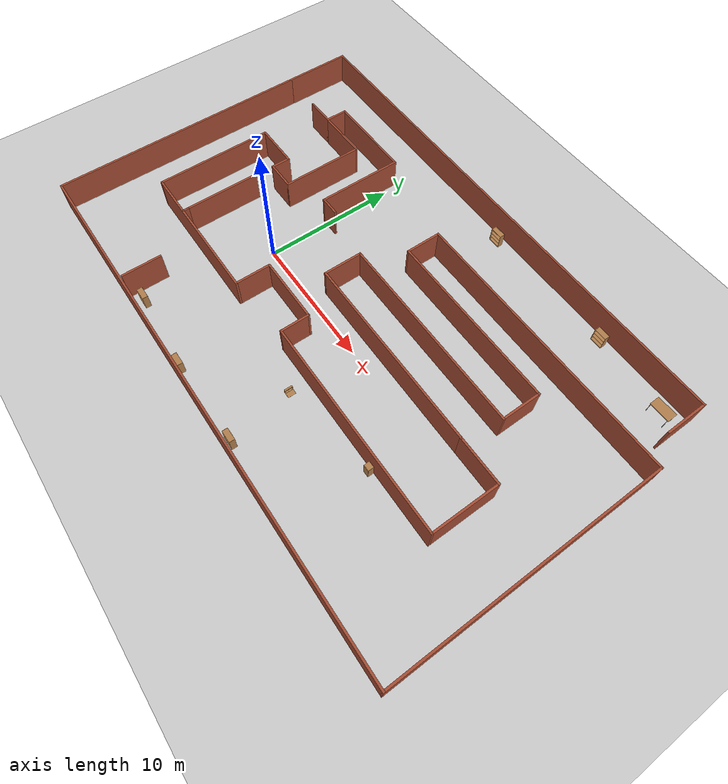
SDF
<sdf version="1.7">
 <world name="default">
  <light name="sun" type="directional">
   <pose>0 0 10 0 -0 0</pose>
   <diffuse>0.8 0.8 0.8 1</diffuse>
   <specular>0.2 0.2 0.2 1</specular>
   <attenuation>
    <range>1000</range>
    <constant>0.9</constant>
    <linear>0.01</linear>
    <quadratic>0.001</quadratic>
   </attenuation>
   <direction>-0.5 0.1 -0.9</direction>
   <spot><inner_angle>0</inner_angle><outer_angle>0</outer_angle><falloff>0</falloff></spot>
  </light>
  <model name="ground_plane">
   <static>1</static>
   <link name="link">
    <collision name="collision">
     <geometry><plane><normal>0 0 1</normal><size>100 100</size></plane></geometry>
     <surface><friction><ode><mu>100</mu><mu2>50</mu2></ode></friction></surface>
    </collision>
    <visual name="visual">
     <cast_shadows>0</cast_shadows>
     <geometry><plane><normal>0 0 1</normal><size>100 100</size></plane></geometry>
     <material>
      <script><uri>file://media/materials/scripts/gazebo.material</uri><name>Gazebo/Grey</name></script>
     </material>
    </visual>
   </link>
  </model>
  <gravity>0 0 -9.8</gravity>
  <magnetic_field>6e-06 2.3e-05 -4.2e-05</magnetic_field>
  <atmosphere type="adiabatic"/>
  <physics type="ode">
   <max_step_size>0.001</max_step_size>
   <real_time_factor>1</real_time_factor>
   <real_time_update_rate>1000</real_time_update_rate>
  </physics>
  <scene><ambient>0.4 0.4 0.4 1</ambient><background>0.7 0.7 0.7 1</background><shadows>1</shadows></scene>
  <audio><device>default</device></audio>
  <spherical_coordinates>
   <surface_model>EARTH_WGS84</surface_model>
   <latitude_deg>0</latitude_deg>
   <longitude_deg>0</longitude_deg>
   <elevation>0</elevation>
   <heading_deg>0</heading_deg>
  </spherical_coordinates>
  <model name="test3">
   <pose>7.49486 2.15543 0 0 -0 0</pose>
   <link name="Wall_10">
    <collision name="Wall_10_Collision">
     <geometry><box><size>20.75 0.15 2.5</size></box></geometry>
     <pose>0 0 1.25 0 -0 0</pose>
    </collision>
    <visual name="Wall_10_Visual">
     <pose>0 0 1.25 0 -0 0</pose>
     <geometry><box><size>20.75 0.15 2.5</size></box></geometry>
     <material>
      <script><uri>file://media/materials/scripts/gazebo.material</uri><name>Gazebo/Bricks</name></script>
      <ambient>1 1 1 1</ambient>
     </material>
     <meta><layer>0</layer></meta>
    </visual>
    <pose>9.625 7.375 0 0 -0 3.14159</pose>
   </link>
   <link name="Wall_11">
    <collision name="Wall_11_Collision">
     <geometry><box><size>2.75 0.15 2.5</size></box></geometry>
     <pose>0 0 1.25 0 -0 0</pose>
    </collision>
    <visual name="Wall_11_Visual">
     <pose>0 0 1.25 0 -0 0</pose>
     <geometry><box><size>2.75 0.15 2.5</size></box></geometry>
     <material>
      <script><uri>file://media/materials/scripts/gazebo.material</uri><name>Gazebo/Bricks</name></script>
      <ambient>1 1 1 1</ambient>
     </material>
     <meta><layer>0</layer></meta>
    </visual>
    <pose>-0.675 6.075 0 0 -0 -1.5708</pose>
   </link>
   <link name="Wall_12">
    <collision name="Wall_12_Collision">
     <geometry><box><size>13.25 0.15 2.5</size></box></geometry>
     <pose>0 0 1.25 0 -0 0</pose>
    </collision>
    <visual name="Wall_12_Visual">
     <pose>0 0 1.25 0 -0 0</pose>
     <geometry><box><size>13.25 0.15 2.5</size></box></geometry>
     <material>
      <script><uri>file://media/materials/scripts/gazebo.material</uri><name>Gazebo/Bricks</name></script>
      <ambient>1 1 1 1</ambient>
     </material>
     <meta><layer>0</layer></meta>
    </visual>
    <pose>5.875 4.775 0 0 -0 0</pose>
   </link>
   <link name="Wall_13">
    <collision name="Wall_13_Collision">
     <geometry><box><size>3 0.15 2.5</size></box></geometry>
     <pose>0 0 1.25 0 -0 0</pose>
    </collision>
    <visual name="Wall_13_Visual">
     <pose>0 0 1.25 0 -0 0</pose>
     <geometry><box><size>3 0.15 2.5</size></box></geometry>
     <material>
      <script><uri>file://media/materials/scripts/gazebo.material</uri><name>Gazebo/Bricks</name></script>
      <ambient>1 1 1 1</ambient>
     </material>
     <meta><layer>0</layer></meta>
    </visual>
    <pose>12.425 3.35 0 0 -0 -1.5708</pose>
   </link>
   <link name="Wall_14">
    <collision name="Wall_14_Collision">
     <geometry><box><size>15 0.15 2.5</size></box></geometry>
     <pose>0 0 1.25 0 -0 0</pose>
    </collision>
    <visual name="Wall_14_Visual">
     <pose>0 0 1.25 0 -0 0</pose>
     <geometry><box><size>15 0.15 2.5</size></box></geometry>
     <material>
      <script><uri>file://media/materials/scripts/gazebo.material</uri><name>Gazebo/Bricks</name></script>
      <ambient>1 1 1 1</ambient>
     </material>
     <meta><layer>0</layer></meta>
    </visual>
    <pose>5 1.925 0 0 -0 3.14159</pose>
   </link>
   <link name="Wall_15">
    <collision name="Wall_15_Collision">
     <geometry><box><size>3 0.15 2.5</size></box></geometry>
     <pose>0 0 1.25 0 -0 0</pose>
    </collision>
    <visual name="Wall_15_Visual">
     <pose>0 0 1.25 0 -0 0</pose>
     <geometry><box><size>3 0.15 2.5</size></box></geometry>
     <material>
      <script><uri>file://media/materials/scripts/gazebo.material</uri><name>Gazebo/Bricks</name></script>
      <ambient>1 1 1 1</ambient>
     </material>
     <meta><layer>0</layer></meta>
    </visual>
    <pose>-2.425 0.500001 0 0 -0 -1.5708</pose>
   </link>
   <link name="Wall_16">
    <collision name="Wall_16_Collision">
     <geometry><box><size>14.5 0.15 2.5</size></box></geometry>
     <pose>0 0 1.25 0 -0 0</pose>
    </collision>
    <visual name="Wall_16_Visual">
     <pose>0 0 1.25 0 -0 0</pose>
     <geometry><box><size>14.5 0.15 2.5</size></box></geometry>
     <material>
      <script><uri>file://media/materials/scripts/gazebo.material</uri><name>Gazebo/Bricks</name></script>
      <ambient>1 1 1 1</ambient>
     </material>
     <meta><layer>0</layer></meta>
    </visual>
    <pose>4.75 -0.924999 0 0 -0 0</pose>
   </link>
   <link name="Wall_17">
    <collision name="Wall_17_Collision">
     <geometry><box><size>3.5 0.15 2.5</size></box></geometry>
     <pose>0 0 1.25 0 -0 0</pose>
    </collision>
    <visual name="Wall_17_Visual">
     <pose>0 0 1.25 0 -0 0</pose>
     <geometry><box><size>3.5 0.15 2.5</size></box></geometry>
     <material>
      <script><uri>file://media/materials/scripts/gazebo.material</uri><name>Gazebo/Bricks</name></script>
      <ambient>1 1 1 1</ambient>
     </material>
     <meta><layer>0</layer></meta>
    </visual>
    <pose>13.6 -0.924999 0 0 -0 0</pose>
   </link>
   <link name="Wall_18">
    <collision name="Wall_18_Collision">
     <geometry><box><size>5 0.15 2.5</size></box></geometry>
     <pose>0 0 1.25 0 -0 0</pose>
    </collision>
    <visual name="Wall_18_Visual">
     <pose>0 0 1.25 0 -0 0</pose>
     <geometry><box><size>5 0.15 2.5</size></box></geometry>
     <material>
      <script><uri>file://media/materials/scripts/gazebo.material</uri><name>Gazebo/Bricks</name></script>
      <ambient>1 1 1 1</ambient>
     </material>
     <meta><layer>0</layer></meta>
    </visual>
    <pose>15.275 -3.35 0 0 -0 -1.5708</pose>
   </link>
   <link name="Wall_19">
    <collision name="Wall_19_Collision">
     <geometry><box><size>15.75 0.15 2.5</size></box></geometry>
     <pose>0 0 1.25 0 -0 0</pose>
    </collision>
    <visual name="Wall_19_Visual">
     <pose>0 0 1.25 0 -0 0</pose>
     <geometry><box><size>15.75 0.15 2.5</size></box></geometry>
     <material>
      <script><uri>file://media/materials/scripts/gazebo.material</uri><name>Gazebo/Bricks</name></script>
      <ambient>1 1 1 1</ambient>
     </material>
     <meta><layer>0</layer></meta>
    </visual>
    <pose>7.475 -5.775 0 0 -0 3.14159</pose>
   </link>
   <link name="Wall_20">
    <collision name="Wall_20_Collision">
     <geometry><box><size>2.25 0.15 2.5</size></box></geometry>
     <pose>0 0 1.25 0 -0 0</pose>
    </collision>
    <visual name="Wall_20_Visual">
     <pose>0 0 1.25 0 -0 0</pose>
     <geometry><box><size>2.25 0.15 2.5</size></box></geometry>
     <material>
      <script><uri>file://media/materials/scripts/gazebo.material</uri><name>Gazebo/Bricks</name></script>
      <ambient>1 1 1 1</ambient>
     </material>
     <meta><layer>0</layer></meta>
    </visual>
    <pose>-0.325 -4.725 0 0 -0 1.5708</pose>
   </link>
   <link name="Wall_21">
    <collision name="Wall_21_Collision">
     <geometry><box><size>5 0.15 2.5</size></box></geometry>
     <pose>0 0 1.25 0 -0 0</pose>
    </collision>
    <visual name="Wall_21_Visual">
     <pose>0 0 1.25 0 -0 0</pose>
     <geometry><box><size>5 0.15 2.5</size></box></geometry>
     <material>
      <script><uri>file://media/materials/scripts/gazebo.material</uri><name>Gazebo/Bricks</name></script>
      <ambient>1 1 1 1</ambient>
     </material>
     <meta><layer>0</layer></meta>
    </visual>
    <pose>-2.75 -3.675 0 0 -0 3.14159</pose>
   </link>
   <link name="Wall_22">
    <collision name="Wall_22_Collision">
     <geometry><box><size>2.75 0.15 2.5</size></box></geometry>
     <pose>0 0 1.25 0 -0 0</pose>
    </collision>
    <visual name="Wall_22_Visual">
     <pose>0 0 1.25 0 -0 0</pose>
     <geometry><box><size>2.75 0.15 2.5</size></box></geometry>
     <material>
      <script><uri>file://media/materials/scripts/gazebo.material</uri><name>Gazebo/Bricks</name></script>
      <ambient>1 1 1 1</ambient>
     </material>
     <meta><layer>0</layer></meta>
    </visual>
    <pose>-5.175 -4.975 0 0 -0 -1.5708</pose>
   </link>
   <link name="Wall_23">
    <collision name="Wall_23_Collision">
     <geometry><box><size>11 0.15 2.5</size></box></geometry>
     <pose>0 0 1.25 0 -0 0</pose>
    </collision>
    <visual name="Wall_23_Visual">
     <pose>0 0 1.25 0 -0 0</pose>
     <geometry><box><size>11 0.15 2.5</size></box></geometry>
     <material>
      <script><uri>file://media/materials/scripts/gazebo.material</uri><name>Gazebo/Bricks</name></script>
      <ambient>1 1 1 1</ambient>
     </material>
     <meta><layer>0</layer></meta>
    </visual>
    <pose>-10.6 -6.275 0 0 -0 3.14159</pose>
   </link>
   <link name="Wall_24">
    <collision name="Wall_24_Collision">
     <geometry><box><size>9 0.15 2.5</size></box></geometry>
     <pose>0 0 1.25 0 -0 0</pose>
    </collision>
    <visual name="Wall_24_Visual">
     <pose>0 0 1.25 0 -0 0</pose>
     <geometry><box><size>9 0.15 2.5</size></box></geometry>
     <material>
      <script><uri>file://media/materials/scripts/gazebo.material</uri><name>Gazebo/Bricks</name></script>
      <ambient>1 1 1 1</ambient>
     </material>
     <meta><layer>0</layer></meta>
    </visual>
    <pose>-16.025 -1.85 0 0 -0 1.5708</pose>
   </link>
   <link name="Wall_25">
    <collision name="Wall_25_Collision">
     <geometry><box><size>3.5 0.15 2.5</size></box></geometry>
     <pose>0 0 1.25 0 -0 0</pose>
    </collision>
    <visual name="Wall_25_Visual">
     <pose>0 0 1.25 0 -0 0</pose>
     <geometry><box><size>3.5 0.15 2.5</size></box></geometry>
     <material>
      <script><uri>file://media/materials/scripts/gazebo.material</uri><name>Gazebo/Bricks</name></script>
      <ambient>1 1 1 1</ambient>
     </material>
     <meta><layer>0</layer></meta>
    </visual>
    <pose>-14.35 2.575 0 0 -0 0</pose>
   </link>
   <link name="Wall_26">
    <collision name="Wall_26_Collision">
     <geometry><box><size>1.5 0.15 2.5</size></box></geometry>
     <pose>0 0 1.25 0 -0 0</pose>
    </collision>
    <visual name="Wall_26_Visual">
     <pose>0 0 1.25 0 -0 0</pose>
     <geometry><box><size>1.5 0.15 2.5</size></box></geometry>
     <material>
      <script><uri>file://media/materials/scripts/gazebo.material</uri><name>Gazebo/Bricks</name></script>
      <ambient>1 1 1 1</ambient>
     </material>
     <meta><layer>0</layer></meta>
    </visual>
    <pose>-12.675 1.9 0 0 -0 -1.5708</pose>
   </link>
   <link name="Wall_27">
    <collision name="Wall_27_Collision">
     <geometry><box><size>2.25 0.15 2.5</size></box></geometry>
     <pose>0 0 1.25 0 -0 0</pose>
    </collision>
    <visual name="Wall_27_Visual">
     <pose>0 0 1.25 0 -0 0</pose>
     <geometry><box><size>2.25 0.15 2.5</size></box></geometry>
     <material>
      <script><uri>file://media/materials/scripts/gazebo.material</uri><name>Gazebo/Bricks</name></script>
      <ambient>1 1 1 1</ambient>
     </material>
     <meta><layer>0</layer></meta>
    </visual>
    <pose>-11.625 1.225 0 0 -0 0</pose>
   </link>
   <link name="Wall_28">
    <collision name="Wall_28_Collision">
     <geometry><box><size>6.25 0.15 2.5</size></box></geometry>
     <pose>0 0 1.25 0 -0 0</pose>
    </collision>
    <visual name="Wall_28_Visual">
     <pose>0 0 1.25 0 -0 0</pose>
     <geometry><box><size>6.25 0.15 2.5</size></box></geometry>
     <material>
      <script><uri>file://media/materials/scripts/gazebo.material</uri><name>Gazebo/Bricks</name></script>
      <ambient>1 1 1 1</ambient>
     </material>
     <meta><layer>0</layer></meta>
    </visual>
    <pose>-10.575 4.275 0 0 -0 1.5708</pose>
   </link>
   <link name="Wall_29">
    <collision name="Wall_29_Collision">
     <geometry><box><size>4 0.15 2.5</size></box></geometry>
     <pose>0 0 1.25 0 -0 0</pose>
    </collision>
    <visual name="Wall_29_Visual">
     <pose>0 0 1.25 0 -0 0</pose>
     <geometry><box><size>4 0.15 2.5</size></box></geometry>
     <material>
      <script><uri>file://media/materials/scripts/gazebo.material</uri><name>Gazebo/Bricks</name></script>
      <ambient>1 1 1 1</ambient>
     </material>
     <meta><layer>0</layer></meta>
    </visual>
    <pose>-12.5 7.325 0 0 -0 3.14159</pose>
   </link>
   <link name="Wall_30">
    <collision name="Wall_30_Collision">
     <geometry><box><size>1.75 0.15 2.5</size></box></geometry>
     <pose>0 0 1.25 0 -0 0</pose>
    </collision>
    <visual name="Wall_30_Visual">
     <pose>0 0 1.25 0 -0 0</pose>
     <geometry><box><size>1.75 0.15 2.5</size></box></geometry>
     <material>
      <script><uri>file://media/materials/scripts/gazebo.material</uri><name>Gazebo/Bricks</name></script>
      <ambient>1 1 1 1</ambient>
     </material>
     <meta><layer>0</layer></meta>
    </visual>
    <pose>-14.425 8.125 0 0 -0 1.5708</pose>
   </link>
   <link name="Wall_31">
    <collision name="Wall_31_Collision">
     <geometry><box><size>6.75 0.15 2.5</size></box></geometry>
     <pose>0 0 1.25 0 -0 0</pose>
    </collision>
    <visual name="Wall_31_Visual">
     <pose>0 0 1.25 0 -0 0</pose>
     <geometry><box><size>6.75 0.15 2.5</size></box></geometry>
     <material>
      <script><uri>file://media/materials/scripts/gazebo.material</uri><name>Gazebo/Bricks</name></script>
      <ambient>1 1 1 1</ambient>
     </material>
     <meta><layer>0</layer></meta>
    </visual>
    <pose>-11.125 8.925 0 0 -0 0</pose>
   </link>
   <link name="Wall_33">
    <collision name="Wall_33_Collision">
     <geometry><box><size>5.25 0.15 2.5</size></box></geometry>
     <pose>0 0 1.25 0 -0 0</pose>
    </collision>
    <visual name="Wall_33_Visual">
     <pose>0 0 1.25 0 -0 0</pose>
     <geometry><box><size>5.25 0.15 2.5</size></box></geometry>
     <material>
      <script><uri>file://media/materials/scripts/gazebo.material</uri><name>Gazebo/Bricks</name></script>
      <ambient>1 1 1 1</ambient>
     </material>
     <meta><layer>0</layer></meta>
    </visual>
    <pose>-19.925 9.925 0 0 -0 1.5708</pose>
   </link>
   <link name="Wall_34">
    <collision name="Wall_34_Collision">
     <geometry><box><size>38.75 0.15 2.5</size></box></geometry>
     <pose>0 0 1.25 0 -0 0</pose>
    </collision>
    <visual name="Wall_34_Visual">
     <pose>0 0 1.25 0 -0 0</pose>
     <geometry><box><size>38.75 0.15 2.5</size></box></geometry>
     <material>
      <script><uri>file://media/materials/scripts/gazebo.material</uri><name>Gazebo/Bricks</name></script>
      <ambient>0.760784 0.662745 0.627451 1</ambient>
     </material>
     <meta><layer>0</layer></meta>
    </visual>
    <pose>-0.625 12.475 0 0 -0 0</pose>
   </link>
   <link name="Wall_36">
    <collision name="Wall_36_Collision">
     <geometry><box><size>5.75 0.15 2.5</size></box></geometry>
     <pose>0 0 1.25 0 -0 0</pose>
    </collision>
    <visual name="Wall_36_Visual">
     <pose>0 0 1.25 0 -0 0</pose>
     <geometry><box><size>5.75 0.15 2.5</size></box></geometry>
     <material>
      <script><uri>file://media/materials/scripts/gazebo.material</uri><name>Gazebo/Bricks</name></script>
      <ambient>1 1 1 1</ambient>
     </material>
     <meta><layer>0</layer></meta>
    </visual>
    <pose>-12.7444 -3.08865 0 0 -0 -1.5708</pose>
   </link>
   <link name="Wall_38">
    <collision name="Wall_38_Collision">
     <geometry><box><size>0.5 0.15 2.5</size></box></geometry>
     <pose>0 0 1.25 0 -0 0</pose>
    </collision>
    <visual name="Wall_38_Visual">
     <pose>0 0 1.25 0 -0 0</pose>
     <geometry><box><size>0.5 0.15 2.5</size></box></geometry>
     <material>
      <script><uri>file://media/materials/scripts/gazebo.material</uri><name>Gazebo/Bricks</name></script>
      <ambient>1 1 1 1</ambient>
     </material>
     <meta><layer>0</layer></meta>
    </visual>
    <pose>-12.7444 -6.06365 0 0 -0 -1.5708</pose>
   </link>
   <link name="Wall_40">
    <collision name="Wall_40_Collision">
     <geometry><box><size>6.5 0.15 2.5</size></box></geometry>
     <pose>0 0 1.25 0 -0 0</pose>
    </collision>
    <visual name="Wall_40_Visual">
     <pose>0 0 1.25 0 -0 0</pose>
     <geometry><box><size>6.5 0.15 2.5</size></box></geometry>
     <material>
      <script><uri>file://media/materials/scripts/gazebo.material</uri><name>Gazebo/Bricks</name></script>
      <ambient>1 1 1 1</ambient>
     </material>
     <meta><layer>0</layer></meta>
    </visual>
    <pose>-7.825 5.75 0 0 -0 -1.5708</pose>
   </link>
   <link name="Wall_42">
    <collision name="Wall_42_Collision">
     <geometry><box><size>3.25 0.15 2.5</size></box></geometry>
     <pose>0 0 1.25 0 -0 0</pose>
    </collision>
    <visual name="Wall_42_Visual">
     <pose>0 0 1.25 0 -0 0</pose>
     <geometry><box><size>3.25 0.15 2.5</size></box></geometry>
     <material>
      <script><uri>file://media/materials/scripts/gazebo.material</uri><name>Gazebo/Bricks</name></script>
      <ambient>1 1 1 1</ambient>
     </material>
     <meta><layer>0</layer></meta>
    </visual>
    <pose>18.675 10.925 0 0 -0 -1.5708</pose>
   </link>
   <link name="Wall_44">
    <collision name="Wall_44_Collision">
     <geometry><box><size>3 0.15 2.5</size></box></geometry>
     <pose>0 0 1.25 0 -0 0</pose>
    </collision>
    <visual name="Wall_44_Visual">
     <pose>0 0 1.25 0 -0 0</pose>
     <geometry><box><size>3 0.15 2.5</size></box></geometry>
     <material>
      <script><uri>file://media/materials/scripts/gazebo.material</uri><name>Gazebo/Bricks</name></script>
      <ambient>1 1 1 1</ambient>
     </material>
     <meta><layer>0</layer></meta>
    </visual>
    <pose>-10.1005 -10.8427 0 0 -0 -1.5708</pose>
   </link>
   <link name="Wall_46">
    <collision name="Wall_46_Collision">
     <geometry><box><size>2.25 0.15 2.5</size></box></geometry>
     <pose>0 0 1.25 0 -0 0</pose>
    </collision>
    <visual name="Wall_46_Visual">
     <pose>0 0 1.25 0 -0 0</pose>
     <geometry><box><size>2.25 0.15 2.5</size></box></geometry>
     <material>
      <script><uri>file://media/materials/scripts/gazebo.material</uri><name>Gazebo/Bricks</name></script>
      <ambient>1 1 1 1</ambient>
     </material>
     <meta><layer>0</layer></meta>
    </visual>
    <pose>-15.475 7.325 0 0 -0 3.14159</pose>
   </link>
   <link name="Wall_48">
    <collision name="Wall_48_Collision">
     <geometry><box><size>1.5 0.15 2.5</size></box></geometry>
     <pose>0 0 1.25 0 -0 0</pose>
    </collision>
    <visual name="Wall_48_Visual">
     <pose>0 0 1.25 0 -0 0</pose>
     <geometry><box><size>1.5 0.15 2.5</size></box></geometry>
     <material>
      <script><uri>file://media/materials/scripts/gazebo.material</uri><name>Gazebo/Bricks</name></script>
      <ambient>1 1 1 1</ambient>
     </material>
     <meta><layer>0</layer></meta>
    </visual>
    <pose>-7.15 2.575 0 0 -0 0</pose>
   </link>
   <link name="Wall_7">
    <collision name="Wall_7_Collision">
     <geometry><box><size>20 0.15 2.5</size></box></geometry>
     <pose>0 0 1.25 0 -0 0</pose>
    </collision>
    <visual name="Wall_7_Visual">
     <pose>0 0 1.25 0 -0 0</pose>
     <geometry><box><size>20 0.15 2.5</size></box></geometry>
     <material>
      <script><uri>file://media/materials/scripts/gazebo.material</uri><name>Gazebo/Bricks</name></script>
      <ambient>1 1 1 1</ambient>
     </material>
     <meta><layer>0</layer></meta>
    </visual>
    <pose>-19.925 -2.55 0 0 -0 -1.5708</pose>
   </link>
   <link name="Wall_8">
    <collision name="Wall_8_Collision">
     <geometry><box><size>40 0.15 2.5</size></box></geometry>
     <pose>0 0 1.25 0 -0 0</pose>
    </collision>
    <visual name="Wall_8_Visual">
     <pose>0 0 1.25 0 -0 0</pose>
     <geometry><box><size>40 0.15 2.5</size></box></geometry>
     <material>
      <script><uri>file://media/materials/scripts/gazebo.material</uri><name>Gazebo/Bricks</name></script>
      <ambient>1 1 1 1</ambient>
     </material>
     <meta><layer>0</layer></meta>
    </visual>
    <pose>0 -12.475 0 0 -0 0</pose>
   </link>
   <link name="Wall_9">
    <collision name="Wall_9_Collision">
     <geometry><box><size>20 0.15 2.5</size></box></geometry>
     <pose>0 0 1.25 0 -0 0</pose>
    </collision>
    <visual name="Wall_9_Visual">
     <pose>0 0 1.25 0 -0 0</pose>
     <geometry><box><size>20 0.15 2.5</size></box></geometry>
     <material>
      <script><uri>file://media/materials/scripts/gazebo.material</uri><name>Gazebo/Bricks</name></script>
      <ambient>1 1 1 1</ambient>
     </material>
     <meta><layer>0</layer></meta>
    </visual>
    <pose>19.925 -2.55 0 0 -0 1.5708</pose>
   </link>
   <static>1</static>
  </model>
  <model name="table">
   <static>1</static>
   <link name="link">
    <collision name="surface">
     <pose>0 0 1 0 -0 0</pose>
     <geometry><box><size>1.5 0.8 0.03</size></box></geometry>
     <surface><friction><ode><mu>0.6</mu><mu2>0.6</mu2></ode></friction></surface>
    </collision>
    <visual name="visual1">
     <pose>0 0 1 0 -0 0</pose>
     <geometry><box><size>1.5 0.8 0.03</size></box></geometry>
     <material>
      <script><uri>file://media/materials/scripts/gazebo.material</uri><name>Gazebo/Wood</name></script>
     </material>
    </visual>
    <collision name="front_left_leg">
     <pose>0.68 0.38 0.5 0 -0 0</pose>
     <geometry><cylinder><radius>0.02</radius><length>1</length></cylinder></geometry>
    </collision>
    <visual name="front_left_leg">
     <pose>0.68 0.38 0.5 0 -0 0</pose>
     <geometry><cylinder><radius>0.02</radius><length>1</length></cylinder></geometry>
     <material>
      <script><uri>file://media/materials/scripts/gazebo.material</uri><name>Gazebo/Grey</name></script>
     </material>
    </visual>
    <collision name="front_right_leg">
     <pose>0.68 -0.38 0.5 0 -0 0</pose>
     <geometry><cylinder><radius>0.02</radius><length>1</length></cylinder></geometry>
    </collision>
    <visual name="front_right_leg">
     <pose>0.68 -0.38 0.5 0 -0 0</pose>
     <geometry><cylinder><radius>0.02</radius><length>1</length></cylinder></geometry>
     <material>
      <script><uri>file://media/materials/scripts/gazebo.material</uri><name>Gazebo/Grey</name></script>
     </material>
    </visual>
    <collision name="back_right_leg">
     <pose>-0.68 -0.38 0.5 0 -0 0</pose>
     <geometry><cylinder><radius>0.02</radius><length>1</length></cylinder></geometry>
    </collision>
    <visual name="back_right_leg">
     <pose>-0.68 -0.38 0.5 0 -0 0</pose>
     <geometry><cylinder><radius>0.02</radius><length>1</length></cylinder></geometry>
     <material>
      <script><uri>file://media/materials/scripts/gazebo.material</uri><name>Gazebo/Grey</name></script>
     </material>
    </visual>
    <collision name="back_left_leg">
     <pose>-0.68 0.38 0.5 0 -0 0</pose>
     <geometry><cylinder><radius>0.02</radius><length>1</length></cylinder></geometry>
    </collision>
    <visual name="back_left_leg">
     <pose>-0.68 0.38 0.5 0 -0 0</pose>
     <geometry><cylinder><radius>0.02</radius><length>1</length></cylinder></geometry>
     <material>
      <script><uri>file://media/materials/scripts/gazebo.material</uri><name>Gazebo/Grey</name></script>
     </material>
    </visual>
   </link>
   <pose>24.8167 13.295 0 0 -0 0</pose>
  </model>
  <model name="bookshelf">
   <static>1</static>
   <link name="link">
    <inertial><mass>1</mass></inertial>
    <collision name="back">
     <pose>0 0.005 0.6 0 -0 0</pose>
     <geometry><box><size>0.9 0.01 1.2</size></box></geometry>
    </collision>
    <visual name="visual1">
     <pose>0 0.005 0.6 0 -0 0</pose>
     <geometry><box><size>0.9 0.01 1.2</size></box></geometry>
     <material>
      <script><uri>file://media/materials/scripts/gazebo.material</uri><name>Gazebo/Wood</name></script>
     </material>
    </visual>
    <collision name="left_side">
     <pose>0.45 -0.195 0.6 0 -0 0</pose>
     <geometry><box><size>0.02 0.4 1.2</size></box></geometry>
    </collision>
    <visual name="visual2">
     <pose>0.45 -0.195 0.6 0 -0 0</pose>
     <geometry><box><size>0.02 0.4 1.2</size></box></geometry>
     <material>
      <script><uri>file://media/materials/scripts/gazebo.material</uri><name>Gazebo/Wood</name></script>
     </material>
    </visual>
    <collision name="right_side">
     <pose>-0.45 -0.195 0.6 0 -0 0</pose>
     <geometry><box><size>0.02 0.4 1.2</size></box></geometry>
    </collision>
    <visual name="visual3">
     <pose>-0.45 -0.195 0.6 0 -0 0</pose>
     <geometry><box><size>0.02 0.4 1.2</size></box></geometry>
     <material>
      <script><uri>file://media/materials/scripts/gazebo.material</uri><name>Gazebo/Wood</name></script>
     </material>
    </visual>
    <collision name="bottom">
     <pose>0 -0.195 0.03 0 -0 0</pose>
     <geometry><box><size>0.88 0.4 0.06</size></box></geometry>
    </collision>
    <visual name="visual4">
     <pose>0 -0.195 0.03 0 -0 0</pose>
     <geometry><box><size>0.88 0.4 0.06</size></box></geometry>
     <material>
      <script><uri>file://media/materials/scripts/gazebo.material</uri><name>Gazebo/Wood</name></script>
     </material>
    </visual>
    <collision name="top">
     <pose>0 -0.195 1.19 0 -0 0</pose>
     <geometry><box><size>0.88 0.4 0.02</size></box></geometry>
    </collision>
    <visual name="visual5">
     <pose>0 -0.195 1.19 0 -0 0</pose>
     <geometry><box><size>0.88 0.4 0.02</size></box></geometry>
     <material>
      <script><uri>file://media/materials/scripts/gazebo.material</uri><name>Gazebo/Wood</name></script>
     </material>
    </visual>
    <collision name="low_shelf">
     <pose>0 -0.195 0.43 0 -0 0</pose>
     <geometry><box><size>0.88 0.4 0.02</size></box></geometry>
    </collision>
    <visual name="visual6">
     <pose>0 -0.195 0.43 0 -0 0</pose>
     <geometry><box><size>0.88 0.4 0.02</size></box></geometry>
     <material>
      <script><uri>file://media/materials/scripts/gazebo.material</uri><name>Gazebo/Wood</name></script>
     </material>
    </visual>
    <collision name="high_shelf">
     <pose>0 -0.195 0.8 0 -0 0</pose>
     <geometry><box><size>0.88 0.4 0.02</size></box></geometry>
    </collision>
    <visual name="visual7">
     <pose>0 -0.195 0.8 0 -0 0</pose>
     <geometry><box><size>0.88 0.4 0.02</size></box></geometry>
     <material>
      <script><uri>file://media/materials/scripts/gazebo.material</uri><name>Gazebo/Wood</name></script>
     </material>
    </visual>
   </link>
   <pose>18.7841 14.207 0 0 -0 0</pose>
  </model>
  <model name="bookshelf_0">
   <static>1</static>
   <link name="link">
    <inertial><mass>1</mass></inertial>
    <collision name="back">
     <pose>0 0.005 0.6 0 -0 0</pose>
     <geometry><box><size>0.9 0.01 1.2</size></box></geometry>
    </collision>
    <visual name="visual1">
     <pose>0 0.005 0.6 0 -0 0</pose>
     <geometry><box><size>0.9 0.01 1.2</size></box></geometry>
     <material>
      <script><uri>file://media/materials/scripts/gazebo.material</uri><name>Gazebo/Wood</name></script>
     </material>
    </visual>
    <collision name="left_side">
     <pose>0.45 -0.195 0.6 0 -0 0</pose>
     <geometry><box><size>0.02 0.4 1.2</size></box></geometry>
    </collision>
    <visual name="visual2">
     <pose>0.45 -0.195 0.6 0 -0 0</pose>
     <geometry><box><size>0.02 0.4 1.2</size></box></geometry>
     <material>
      <script><uri>file://media/materials/scripts/gazebo.material</uri><name>Gazebo/Wood</name></script>
     </material>
    </visual>
    <collision name="right_side">
     <pose>-0.45 -0.195 0.6 0 -0 0</pose>
     <geometry><box><size>0.02 0.4 1.2</size></box></geometry>
    </collision>
    <visual name="visual3">
     <pose>-0.45 -0.195 0.6 0 -0 0</pose>
     <geometry><box><size>0.02 0.4 1.2</size></box></geometry>
     <material>
      <script><uri>file://media/materials/scripts/gazebo.material</uri><name>Gazebo/Wood</name></script>
     </material>
    </visual>
    <collision name="bottom">
     <pose>0 -0.195 0.03 0 -0 0</pose>
     <geometry><box><size>0.88 0.4 0.06</size></box></geometry>
    </collision>
    <visual name="visual4">
     <pose>0 -0.195 0.03 0 -0 0</pose>
     <geometry><box><size>0.88 0.4 0.06</size></box></geometry>
     <material>
      <script><uri>file://media/materials/scripts/gazebo.material</uri><name>Gazebo/Wood</name></script>
     </material>
    </visual>
    <collision name="top">
     <pose>0 -0.195 1.19 0 -0 0</pose>
     <geometry><box><size>0.88 0.4 0.02</size></box></geometry>
    </collision>
    <visual name="visual5">
     <pose>0 -0.195 1.19 0 -0 0</pose>
     <geometry><box><size>0.88 0.4 0.02</size></box></geometry>
     <material>
      <script><uri>file://media/materials/scripts/gazebo.material</uri><name>Gazebo/Wood</name></script>
     </material>
    </visual>
    <collision name="low_shelf">
     <pose>0 -0.195 0.43 0 -0 0</pose>
     <geometry><box><size>0.88 0.4 0.02</size></box></geometry>
    </collision>
    <visual name="visual6">
     <pose>0 -0.195 0.43 0 -0 0</pose>
     <geometry><box><size>0.88 0.4 0.02</size></box></geometry>
     <material>
      <script><uri>file://media/materials/scripts/gazebo.material</uri><name>Gazebo/Wood</name></script>
     </material>
    </visual>
    <collision name="high_shelf">
     <pose>0 -0.195 0.8 0 -0 0</pose>
     <geometry><box><size>0.88 0.4 0.02</size></box></geometry>
    </collision>
    <visual name="visual7">
     <pose>0 -0.195 0.8 0 -0 0</pose>
     <geometry><box><size>0.88 0.4 0.02</size></box></geometry>
     <material>
      <script><uri>file://media/materials/scripts/gazebo.material</uri><name>Gazebo/Wood</name></script>
     </material>
    </visual>
   </link>
   <pose>8.46189 14.1139 0 0 -0 0</pose>
  </model>
  <model name="bookshelf_1">
   <static>1</static>
   <link name="link">
    <inertial><mass>1</mass></inertial>
    <collision name="back">
     <pose>0 0.005 0.6 0 -0 0</pose>
     <geometry><box><size>0.9 0.01 1.2</size></box></geometry>
    </collision>
    <visual name="visual1">
     <pose>0 0.005 0.6 0 -0 0</pose>
     <geometry><box><size>0.9 0.01 1.2</size></box></geometry>
     <material>
      <script><uri>file://media/materials/scripts/gazebo.material</uri><name>Gazebo/Wood</name></script>
     </material>
    </visual>
    <collision name="left_side">
     <pose>0.45 -0.195 0.6 0 -0 0</pose>
     <geometry><box><size>0.02 0.4 1.2</size></box></geometry>
    </collision>
    <visual name="visual2">
     <pose>0.45 -0.195 0.6 0 -0 0</pose>
     <geometry><box><size>0.02 0.4 1.2</size></box></geometry>
     <material>
      <script><uri>file://media/materials/scripts/gazebo.material</uri><name>Gazebo/Wood</name></script>
     </material>
    </visual>
    <collision name="right_side">
     <pose>-0.45 -0.195 0.6 0 -0 0</pose>
     <geometry><box><size>0.02 0.4 1.2</size></box></geometry>
    </collision>
    <visual name="visual3">
     <pose>-0.45 -0.195 0.6 0 -0 0</pose>
     <geometry><box><size>0.02 0.4 1.2</size></box></geometry>
     <material>
      <script><uri>file://media/materials/scripts/gazebo.material</uri><name>Gazebo/Wood</name></script>
     </material>
    </visual>
    <collision name="bottom">
     <pose>0 -0.195 0.03 0 -0 0</pose>
     <geometry><box><size>0.88 0.4 0.06</size></box></geometry>
    </collision>
    <visual name="visual4">
     <pose>0 -0.195 0.03 0 -0 0</pose>
     <geometry><box><size>0.88 0.4 0.06</size></box></geometry>
     <material>
      <script><uri>file://media/materials/scripts/gazebo.material</uri><name>Gazebo/Wood</name></script>
     </material>
    </visual>
    <collision name="top">
     <pose>0 -0.195 1.19 0 -0 0</pose>
     <geometry><box><size>0.88 0.4 0.02</size></box></geometry>
    </collision>
    <visual name="visual5">
     <pose>0 -0.195 1.19 0 -0 0</pose>
     <geometry><box><size>0.88 0.4 0.02</size></box></geometry>
     <material>
      <script><uri>file://media/materials/scripts/gazebo.material</uri><name>Gazebo/Wood</name></script>
     </material>
    </visual>
    <collision name="low_shelf">
     <pose>0 -0.195 0.43 0 -0 0</pose>
     <geometry><box><size>0.88 0.4 0.02</size></box></geometry>
    </collision>
    <visual name="visual6">
     <pose>0 -0.195 0.43 0 -0 0</pose>
     <geometry><box><size>0.88 0.4 0.02</size></box></geometry>
     <material>
      <script><uri>file://media/materials/scripts/gazebo.material</uri><name>Gazebo/Wood</name></script>
     </material>
    </visual>
    <collision name="high_shelf">
     <pose>0 -0.195 0.8 0 -0 0</pose>
     <geometry><box><size>0.88 0.4 0.02</size></box></geometry>
    </collision>
    <visual name="visual7">
     <pose>0 -0.195 0.8 0 -0 0</pose>
     <geometry><box><size>0.88 0.4 0.02</size></box></geometry>
     <material>
      <script><uri>file://media/materials/scripts/gazebo.material</uri><name>Gazebo/Wood</name></script>
     </material>
    </visual>
   </link>
   <pose>-1.51051 -9.32227 0 0 -0 0</pose>
  </model>
  <model name="bookshelf_2">
   <static>1</static>
   <link name="link">
    <inertial><mass>1</mass></inertial>
    <collision name="back">
     <pose>0 0.005 0.6 0 -0 0</pose>
     <geometry><box><size>0.9 0.01 1.2</size></box></geometry>
    </collision>
    <visual name="visual1">
     <pose>0 0.005 0.6 0 -0 0</pose>
     <geometry><box><size>0.9 0.01 1.2</size></box></geometry>
     <material>
      <script><uri>file://media/materials/scripts/gazebo.material</uri><name>Gazebo/Wood</name></script>
     </material>
    </visual>
    <collision name="left_side">
     <pose>0.45 -0.195 0.6 0 -0 0</pose>
     <geometry><box><size>0.02 0.4 1.2</size></box></geometry>
    </collision>
    <visual name="visual2">
     <pose>0.45 -0.195 0.6 0 -0 0</pose>
     <geometry><box><size>0.02 0.4 1.2</size></box></geometry>
     <material>
      <script><uri>file://media/materials/scripts/gazebo.material</uri><name>Gazebo/Wood</name></script>
     </material>
    </visual>
    <collision name="right_side">
     <pose>-0.45 -0.195 0.6 0 -0 0</pose>
     <geometry><box><size>0.02 0.4 1.2</size></box></geometry>
    </collision>
    <visual name="visual3">
     <pose>-0.45 -0.195 0.6 0 -0 0</pose>
     <geometry><box><size>0.02 0.4 1.2</size></box></geometry>
     <material>
      <script><uri>file://media/materials/scripts/gazebo.material</uri><name>Gazebo/Wood</name></script>
     </material>
    </visual>
    <collision name="bottom">
     <pose>0 -0.195 0.03 0 -0 0</pose>
     <geometry><box><size>0.88 0.4 0.06</size></box></geometry>
    </collision>
    <visual name="visual4">
     <pose>0 -0.195 0.03 0 -0 0</pose>
     <geometry><box><size>0.88 0.4 0.06</size></box></geometry>
     <material>
      <script><uri>file://media/materials/scripts/gazebo.material</uri><name>Gazebo/Wood</name></script>
     </material>
    </visual>
    <collision name="top">
     <pose>0 -0.195 1.19 0 -0 0</pose>
     <geometry><box><size>0.88 0.4 0.02</size></box></geometry>
    </collision>
    <visual name="visual5">
     <pose>0 -0.195 1.19 0 -0 0</pose>
     <geometry><box><size>0.88 0.4 0.02</size></box></geometry>
     <material>
      <script><uri>file://media/materials/scripts/gazebo.material</uri><name>Gazebo/Wood</name></script>
     </material>
    </visual>
    <collision name="low_shelf">
     <pose>0 -0.195 0.43 0 -0 0</pose>
     <geometry><box><size>0.88 0.4 0.02</size></box></geometry>
    </collision>
    <visual name="visual6">
     <pose>0 -0.195 0.43 0 -0 0</pose>
     <geometry><box><size>0.88 0.4 0.02</size></box></geometry>
     <material>
      <script><uri>file://media/materials/scripts/gazebo.material</uri><name>Gazebo/Wood</name></script>
     </material>
    </visual>
    <collision name="high_shelf">
     <pose>0 -0.195 0.8 0 -0 0</pose>
     <geometry><box><size>0.88 0.4 0.02</size></box></geometry>
    </collision>
    <visual name="visual7">
     <pose>0 -0.195 0.8 0 -0 0</pose>
     <geometry><box><size>0.88 0.4 0.02</size></box></geometry>
     <material>
      <script><uri>file://media/materials/scripts/gazebo.material</uri><name>Gazebo/Wood</name></script>
     </material>
    </visual>
   </link>
   <pose>4.39653 -9.75952 0 0 -0 0</pose>
  </model>
  <model name="bookshelf_3">
   <static>1</static>
   <link name="link">
    <inertial><mass>1</mass></inertial>
    <collision name="back">
     <pose>0 0.005 0.6 0 -0 0</pose>
     <geometry><box><size>0.9 0.01 1.2</size></box></geometry>
    </collision>
    <visual name="visual1">
     <pose>0 0.005 0.6 0 -0 0</pose>
     <geometry><box><size>0.9 0.01 1.2</size></box></geometry>
     <material>
      <script><uri>file://media/materials/scripts/gazebo.material</uri><name>Gazebo/Wood</name></script>
     </material>
    </visual>
    <collision name="left_side">
     <pose>0.45 -0.195 0.6 0 -0 0</pose>
     <geometry><box><size>0.02 0.4 1.2</size></box></geometry>
    </collision>
    <visual name="visual2">
     <pose>0.45 -0.195 0.6 0 -0 0</pose>
     <geometry><box><size>0.02 0.4 1.2</size></box></geometry>
     <material>
      <script><uri>file://media/materials/scripts/gazebo.material</uri><name>Gazebo/Wood</name></script>
     </material>
    </visual>
    <collision name="right_side">
     <pose>-0.45 -0.195 0.6 0 -0 0</pose>
     <geometry><box><size>0.02 0.4 1.2</size></box></geometry>
    </collision>
    <visual name="visual3">
     <pose>-0.45 -0.195 0.6 0 -0 0</pose>
     <geometry><box><size>0.02 0.4 1.2</size></box></geometry>
     <material>
      <script><uri>file://media/materials/scripts/gazebo.material</uri><name>Gazebo/Wood</name></script>
     </material>
    </visual>
    <collision name="bottom">
     <pose>0 -0.195 0.03 0 -0 0</pose>
     <geometry><box><size>0.88 0.4 0.06</size></box></geometry>
    </collision>
    <visual name="visual4">
     <pose>0 -0.195 0.03 0 -0 0</pose>
     <geometry><box><size>0.88 0.4 0.06</size></box></geometry>
     <material>
      <script><uri>file://media/materials/scripts/gazebo.material</uri><name>Gazebo/Wood</name></script>
     </material>
    </visual>
    <collision name="top">
     <pose>0 -0.195 1.19 0 -0 0</pose>
     <geometry><box><size>0.88 0.4 0.02</size></box></geometry>
    </collision>
    <visual name="visual5">
     <pose>0 -0.195 1.19 0 -0 0</pose>
     <geometry><box><size>0.88 0.4 0.02</size></box></geometry>
     <material>
      <script><uri>file://media/materials/scripts/gazebo.material</uri><name>Gazebo/Wood</name></script>
     </material>
    </visual>
    <collision name="low_shelf">
     <pose>0 -0.195 0.43 0 -0 0</pose>
     <geometry><box><size>0.88 0.4 0.02</size></box></geometry>
    </collision>
    <visual name="visual6">
     <pose>0 -0.195 0.43 0 -0 0</pose>
     <geometry><box><size>0.88 0.4 0.02</size></box></geometry>
     <material>
      <script><uri>file://media/materials/scripts/gazebo.material</uri><name>Gazebo/Wood</name></script>
     </material>
    </visual>
    <collision name="high_shelf">
     <pose>0 -0.195 0.8 0 -0 0</pose>
     <geometry><box><size>0.88 0.4 0.02</size></box></geometry>
    </collision>
    <visual name="visual7">
     <pose>0 -0.195 0.8 0 -0 0</pose>
     <geometry><box><size>0.88 0.4 0.02</size></box></geometry>
     <material>
      <script><uri>file://media/materials/scripts/gazebo.material</uri><name>Gazebo/Wood</name></script>
     </material>
    </visual>
   </link>
   <pose>10.8549 -9.62047 0 0 -0 0</pose>
  </model>
  <model name="cabinet">
   <static>1</static>
   <link name="cabinet_bottom_plate">
    <inertial>
     <pose>0 0 -1 0 -0 0</pose>
     <inertia><ixx>2.05</ixx><ixy>0</ixy><ixz>0</ixz><iyy>2.05</iyy><iyz>0</iyz><izz>2.05</izz></inertia>
     <mass>25</mass>
    </inertial>
    <collision name="cabinet_bottom_plate_geom">
     <pose>0 0 0.01 0 -0 0</pose>
     <geometry><box><size>0.45 0.45 0.02</size></box></geometry>
    </collision>
    <visual name="cabinet_bottom_plate_geom_visual">
     <pose>0 0 0.01 0 -0 0</pose>
     <geometry><box><size>0.45 0.45 0.02</size></box></geometry>
     <material>
      <script><uri>file://media/materials/scripts/gazebo.material</uri><name>Gazebo/Wood</name></script>
     </material>
    </visual>
    <collision name="cabinet_bottom_plate_geom_cabinet_back_plate">
     <pose>0.235 0 0.51 0 -0 0</pose>
     <geometry><box><size>0.02 0.45 1.02</size></box></geometry>
    </collision>
    <visual name="cabinet_bottom_plate_geom_cabinet_back_plate_visual">
     <pose>0.235 0 0.51 0 -0 0</pose>
     <geometry><box><size>0.02 0.45 1.02</size></box></geometry>
     <material>
      <script><uri>file://media/materials/scripts/gazebo.material</uri><name>Gazebo/Wood</name></script>
     </material>
    </visual>
    <collision name="cabinet_bottom_plate_geom_cabinet_left_plate">
     <pose>0 0.235 0.51 0 -0 0</pose>
     <geometry><box><size>0.45 0.02 1.02</size></box></geometry>
    </collision>
    <visual name="cabinet_bottom_plate_geom_cabinet_left_plate_visual">
     <pose>0 0.235 0.51 0 -0 0</pose>
     <geometry><box><size>0.45 0.02 1.02</size></box></geometry>
     <material>
      <script><uri>file://media/materials/scripts/gazebo.material</uri><name>Gazebo/Wood</name></script>
     </material>
    </visual>
    <collision name="cabinet_bottom_plate_geom_cabinet_middle_plate">
     <pose>0 0 0.51 0 -0 0</pose>
     <geometry><box><size>0.45 0.45 0.02</size></box></geometry>
    </collision>
    <visual name="cabinet_bottom_plate_geom_cabinet_middle_plate_visual">
     <pose>0 0 0.51 0 -0 0</pose>
     <geometry><box><size>0.45 0.45 0.02</size></box></geometry>
     <material>
      <script><uri>file://media/materials/scripts/gazebo.material</uri><name>Gazebo/Wood</name></script>
     </material>
    </visual>
    <collision name="cabinet_bottom_plate_geom_cabinet_right_plate">
     <pose>0 -0.235 0.51 0 -0 0</pose>
     <geometry><box><size>0.45 0.02 1.02</size></box></geometry>
    </collision>
    <visual name="cabinet_bottom_plate_geom_cabinet_right_plate_visual">
     <pose>0 -0.235 0.51 0 -0 0</pose>
     <geometry><box><size>0.45 0.02 1.02</size></box></geometry>
     <material>
      <script><uri>file://media/materials/scripts/gazebo.material</uri><name>Gazebo/Wood</name></script>
     </material>
    </visual>
    <collision name="cabinet_bottom_plate_geom_cabinet_top_plate">
     <pose>0 0 1.01 0 -0 0</pose>
     <geometry><box><size>0.45 0.45 0.02</size></box></geometry>
    </collision>
    <visual name="cabinet_bottom_plate_geom_cabinet_top_plate_visual">
     <pose>0 0 1.01 0 -0 0</pose>
     <geometry><box><size>0.45 0.45 0.02</size></box></geometry>
     <material>
      <script><uri>file://media/materials/scripts/gazebo.material</uri><name>Gazebo/Wood</name></script>
     </material>
    </visual>
   </link>
   <pose>17.2809 -3.88347 0 0 -0 0</pose>
  </model>
  <model name="wooden_case">
   <link name="base">
    <pose>0 0 0.024 0 -0 0</pose>
    <inertial>
     <pose>-0.022184 0 0.171592 0 -0 0</pose>
     <mass>3.96264</mass>
     <inertia>
      <ixx>0.213536</ixx>
      <ixy>0</ixy>
      <ixz>0.000779377</ixz>
      <iyy>0.0708943</iyy>
      <iyz>0</iyz>
      <izz>0.154604</izz>
     </inertia>
    </inertial>
    <collision name="collision_back">
     <pose>-0.053975 0 0.1778 0 -0 0</pose>
     <geometry><box><size>0.01905 0.5461 0.3175</size></box></geometry>
     <surface>
      <contact>
       <poissons_ratio>0.347</poissons_ratio>
       <elastic_modulus>8.8e+09</elastic_modulus>
       <ode><kp>100000</kp><kd>100</kd><max_vel>100</max_vel><min_depth>0.001</min_depth></ode>
      </contact>
      <friction>
       <torsional>
        <coefficient>1</coefficient>
        <use_patch_radius>0</use_patch_radius>
        <surface_radius>0.01</surface_radius>
       </torsional>
      </friction>
     </surface>
    </collision>
    <visual name="visual_back">
     <pose>-0.053975 0 0.1778 0 -0 0</pose>
     <geometry><box><size>0.01905 0.5461 0.3175</size></box></geometry>
     <material>
      <script><uri>file://media/materials/scripts/gazebo.material</uri><name>Gazebo/Wood</name></script>
     </material>
    </visual>
    <collision name="collision_bottom">
     <pose>0 0 0.009525 0 -0 0</pose>
     <geometry><box><size>0.127 0.5842 0.01905</size></box></geometry>
     <surface>
      <contact>
       <poissons_ratio>0.347</poissons_ratio>
       <elastic_modulus>8.8e+09</elastic_modulus>
       <ode><kp>100000</kp><kd>100</kd><max_vel>100</max_vel><min_depth>0.001</min_depth></ode>
      </contact>
      <friction>
       <torsional>
        <coefficient>1</coefficient>
        <use_patch_radius>0</use_patch_radius>
        <surface_radius>0.01</surface_radius>
       </torsional>
      </friction>
     </surface>
    </collision>
    <visual name="visual_bottom">
     <pose>0 0 0.009525 0 -0 0</pose>
     <geometry><box><size>0.127 0.5842 0.01905</size></box></geometry>
     <material>
      <script><uri>file://media/materials/scripts/gazebo.material</uri><name>Gazebo/Wood</name></script>
     </material>
    </visual>
    <collision name="collision_top">
     <pose>0 0 0.346075 0 -0 0</pose>
     <geometry><box><size>0.127 0.5842 0.01905</size></box></geometry>
     <surface>
      <contact>
       <poissons_ratio>0.347</poissons_ratio>
       <elastic_modulus>8.8e+09</elastic_modulus>
       <ode><kp>100000</kp><kd>100</kd><max_vel>100</max_vel><min_depth>0.001</min_depth></ode>
      </contact>
      <friction>
       <torsional>
        <coefficient>1</coefficient>
        <use_patch_radius>0</use_patch_radius>
        <surface_radius>0.01</surface_radius>
       </torsional>
      </friction>
     </surface>
    </collision>
    <visual name="visual_top">
     <pose>0 0 0.346075 0 -0 0</pose>
     <geometry><box><size>0.127 0.5842 0.01905</size></box></geometry>
     <material>
      <script><uri>file://media/materials/scripts/gazebo.material</uri><name>Gazebo/Wood</name></script>
     </material>
    </visual>
    <collision name="collision_left">
     <pose>0 -0.282575 0.1778 0 -0 0</pose>
     <geometry><box><size>0.127 0.01905 0.3175</size></box></geometry>
     <surface>
      <contact>
       <poissons_ratio>0.347</poissons_ratio>
       <elastic_modulus>8.8e+09</elastic_modulus>
       <ode><kp>100000</kp><kd>100</kd><max_vel>100</max_vel><min_depth>0.001</min_depth></ode>
      </contact>
      <friction>
       <torsional>
        <coefficient>1</coefficient>
        <use_patch_radius>0</use_patch_radius>
        <surface_radius>0.01</surface_radius>
       </torsional>
      </friction>
     </surface>
    </collision>
    <visual name="visual_left">
     <pose>0 -0.282575 0.1778 0 -0 0</pose>
     <geometry><box><size>0.127 0.01905 0.3175</size></box></geometry>
     <material>
      <script><uri>file://media/materials/scripts/gazebo.material</uri><name>Gazebo/Wood</name></script>
     </material>
    </visual>
    <collision name="collision_right">
     <pose>0 0.282575 0.1778 0 -0 0</pose>
     <geometry><box><size>0.127 0.01905 0.3175</size></box></geometry>
     <surface>
      <contact>
       <poissons_ratio>0.347</poissons_ratio>
       <elastic_modulus>8.8e+09</elastic_modulus>
       <ode><kp>100000</kp><kd>100</kd><max_vel>100</max_vel><min_depth>0.001</min_depth></ode>
      </contact>
      <friction>
       <torsional>
        <coefficient>1</coefficient>
        <use_patch_radius>0</use_patch_radius>
        <surface_radius>0.01</surface_radius>
       </torsional>
      </friction>
     </surface>
    </collision>
    <visual name="visual_right">
     <pose>0 0.282575 0.1778 0 -0 0</pose>
     <geometry><box><size>0.127 0.01905 0.3175</size></box></geometry>
     <material>
      <script><uri>file://media/materials/scripts/gazebo.material</uri><name>Gazebo/Wood</name></script>
     </material>
    </visual>
    <collision name="collision_block_left">
     <pose>0.0095 -0.2151 -0.012 0 -0 0</pose>
     <geometry><box><size>0.108 0.05 0.024</size></box></geometry>
     <surface>
      <contact>
       <poissons_ratio>0.347</poissons_ratio>
       <elastic_modulus>8.8e+09</elastic_modulus>
       <ode><kp>100000</kp><kd>100</kd><max_vel>100</max_vel><min_depth>0.001</min_depth></ode>
      </contact>
      <friction>
       <torsional>
        <coefficient>1</coefficient>
        <use_patch_radius>0</use_patch_radius>
        <surface_radius>0.01</surface_radius>
       </torsional>
      </friction>
     </surface>
    </collision>
    <visual name="visual_block_left">
     <pose>0.0095 -0.2151 -0.012 0 -0 0</pose>
     <geometry><box><size>0.108 0.05 0.024</size></box></geometry>
     <material>
      <script><uri>file://media/materials/scripts/gazebo.material</uri><name>Gazebo/Wood</name></script>
     </material>
    </visual>
    <collision name="collision_block_right">
     <pose>0.0095 0.2151 -0.012 0 -0 0</pose>
     <geometry><box><size>0.108 0.05 0.024</size></box></geometry>
     <surface>
      <contact>
       <poissons_ratio>0.347</poissons_ratio>
       <elastic_modulus>8.8e+09</elastic_modulus>
       <ode><kp>100000</kp><kd>100</kd><max_vel>100</max_vel><min_depth>0.001</min_depth></ode>
      </contact>
      <friction>
       <torsional>
        <coefficient>1</coefficient>
        <use_patch_radius>0</use_patch_radius>
        <surface_radius>0.01</surface_radius>
       </torsional>
      </friction>
     </surface>
    </collision>
    <visual name="visual_block_right">
     <pose>0.0095 0.2151 -0.012 0 -0 0</pose>
     <geometry><box><size>0.108 0.05 0.024</size></box></geometry>
     <material>
      <script><uri>file://media/materials/scripts/gazebo.material</uri><name>Gazebo/Wood</name></script>
     </material>
    </visual>
   </link>
   <link name="lid">
    <pose>0.243775 0 0.009525 0 -0 0</pose>
    <inertial>
     <mass>1.97874</mass>
     <inertia>
      <ixx>0.0563367</ixx>
      <ixy>0</ixy>
      <ixz>0</ixz>
      <iyy>0.020911</iyy>
      <iyz>0</iyz>
      <izz>0.0771281</izz>
     </inertia>
    </inertial>
    <collision name="collision">
     <geometry><box><size>0.3556 0.5842 0.01905</size></box></geometry>
     <surface>
      <contact>
       <poissons_ratio>0.347</poissons_ratio>
       <elastic_modulus>8.8e+09</elastic_modulus>
       <ode><kp>100000</kp><kd>100</kd><max_vel>100</max_vel><min_depth>0.001</min_depth></ode>
      </contact>
      <friction>
       <torsional>
        <coefficient>1</coefficient>
        <use_patch_radius>0</use_patch_radius>
        <surface_radius>0.01</surface_radius>
       </torsional>
      </friction>
     </surface>
    </collision>
    <visual name="visual">
     <geometry><box><size>0.3556 0.5842 0.01905</size></box></geometry>
     <material>
      <script><uri>file://media/materials/scripts/gazebo.material</uri><name>Gazebo/Wood</name></script>
     </material>
    </visual>
    <visual name="tee_nut_1">
     <pose>0.122 -0.216 0 0 -0 0</pose>
     <geometry><cylinder><radius>0.00635</radius><length>0.0192405</length></cylinder></geometry>
     <material>
      <script><uri>file://media/materials/scripts/gazebo.material</uri><name>Gazebo/Grey</name></script>
     </material>
    </visual>
    <visual name="tee_nut_2">
     <pose>0.122 -0.088 0 0 -0 0</pose>
     <geometry><cylinder><radius>0.00635</radius><length>0.0192405</length></cylinder></geometry>
     <material>
      <script><uri>file://media/materials/scripts/gazebo.material</uri><name>Gazebo/Grey</name></script>
     </material>
    </visual>
    <visual name="tee_nut_3">
     <pose>0.122 0.088 0 0 -0 0</pose>
     <geometry><cylinder><radius>0.00635</radius><length>0.0192405</length></cylinder></geometry>
     <material>
      <script><uri>file://media/materials/scripts/gazebo.material</uri><name>Gazebo/Grey</name></script>
     </material>
    </visual>
    <visual name="tee_nut_4">
     <pose>0.122 0.216 0 0 -0 0</pose>
     <geometry><cylinder><radius>0.00635</radius><length>0.0192405</length></cylinder></geometry>
     <material>
      <script><uri>file://media/materials/scripts/gazebo.material</uri><name>Gazebo/Grey</name></script>
     </material>
    </visual>
   </link>
   <joint name="lid_hinge" type="revolute">
    <pose>-0.1778 0 0.01905 0 -0 0</pose>
    <parent>base</parent>
    <child>lid</child>
    <axis>
     <xyz>0 1 0</xyz>
     <limit><upper>0.523599</upper><lower>-1.5708</lower></limit>
     <dynamics><spring_reference>0</spring_reference><spring_stiffness>0</spring_stiffness></dynamics>
    </axis>
   </joint>
   <pose>9.92607 -4.98303 -0.001057 0 -0.000429 0</pose>
  </model>
 </world>
</sdf>
